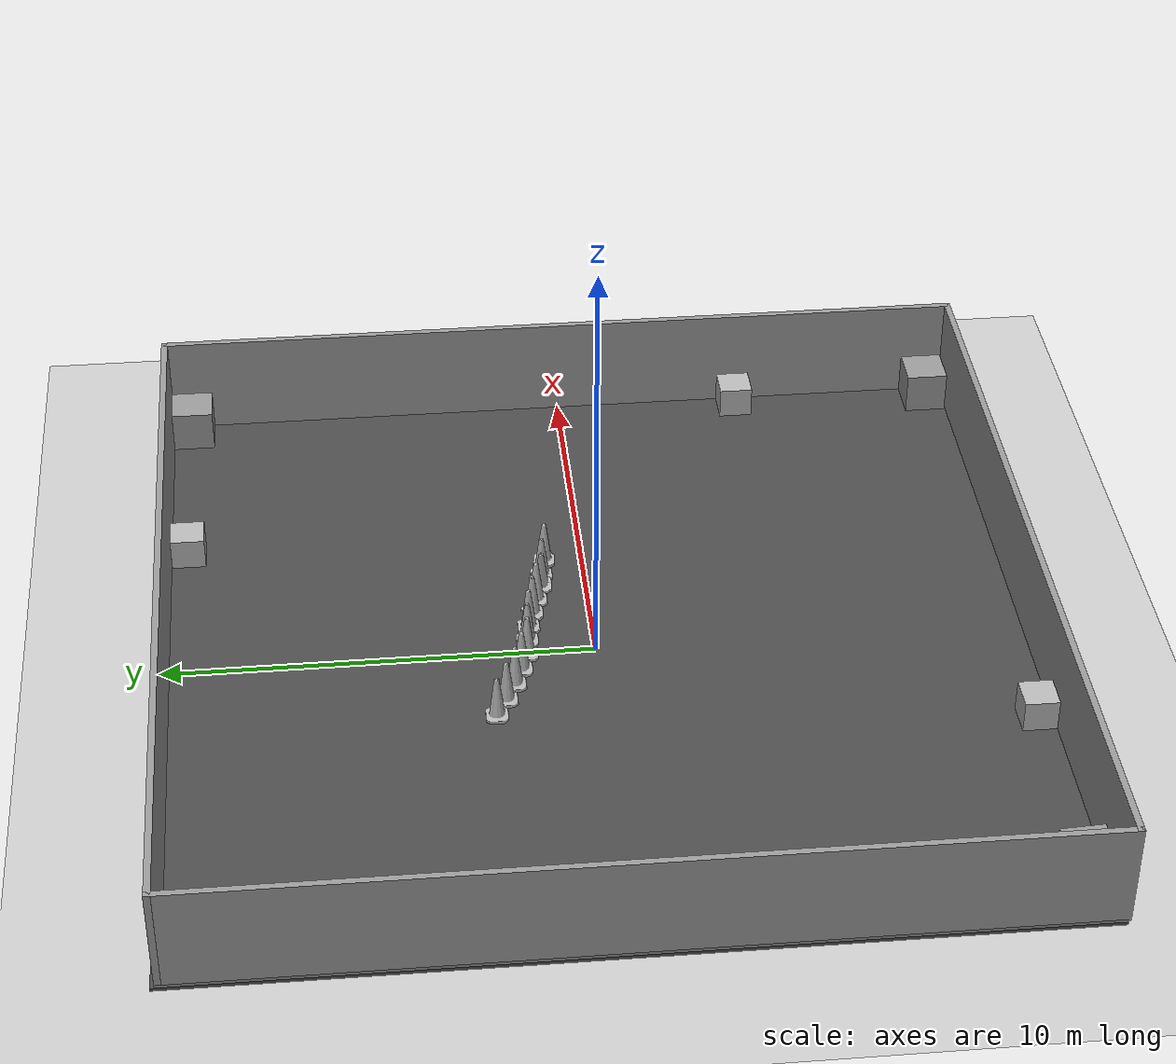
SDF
<sdf version="1.7">
 <world name="default">
  <light name="sun" type="directional">
   <pose>0 0 10 0 -0 0</pose>
   <diffuse>0.8 0.8 0.8 1</diffuse>
   <specular>0.2 0.2 0.2 1</specular>
   <attenuation>
    <range>1000</range>
    <constant>0.9</constant>
    <linear>0.01</linear>
    <quadratic>0.001</quadratic>
   </attenuation>
   <direction>-0.5 0.1 -0.9</direction>
   <spot><inner_angle>0</inner_angle><outer_angle>0</outer_angle><falloff>0</falloff></spot>
  </light>
  <model name="ground_plane">
   <static>1</static>
   <link name="link">
    <collision name="collision">
     <geometry><plane><normal>0 0 1</normal><size>100 100</size></plane></geometry>
     <surface><friction><ode><mu>100</mu><mu2>50</mu2></ode></friction></surface>
    </collision>
    <visual name="visual">
     <cast_shadows>0</cast_shadows>
     <geometry><plane><normal>0 0 1</normal><size>100 100</size></plane></geometry>
     <material>
      <script><uri>file://media/materials/scripts/gazebo.material</uri><name>Gazebo/Grey</name></script>
     </material>
    </visual>
   </link>
  </model>
  <gravity>0 0 -9.8</gravity>
  <magnetic_field>6e-06 2.3e-05 -4.2e-05</magnetic_field>
  <atmosphere type="adiabatic"/>
  <physics type="ode">
   <max_step_size>0.001</max_step_size>
   <real_time_factor>1</real_time_factor>
   <real_time_update_rate>1000</real_time_update_rate>
  </physics>
  <scene><ambient>0.4 0.4 0.4 1</ambient><background>0.7 0.7 0.7 1</background><shadows>1</shadows></scene>
  <audio><device>default</device></audio>
  <spherical_coordinates>
   <surface_model>EARTH_WGS84</surface_model>
   <latitude_deg>0</latitude_deg>
   <longitude_deg>0</longitude_deg>
   <elevation>0</elevation>
   <heading_deg>0</heading_deg>
  </spherical_coordinates>
  <model name="asphalt_plane">
   <static>1</static>
   <link name="link">
    <collision name="collision"><geometry><box><size>20 20 0.1</size></box></geometry></collision>
    <visual name="visual">
     <cast_shadows>0</cast_shadows>
     <geometry><box><size>20 20 0.1</size></box></geometry>
     <material>
      <script>
       <uri>model://asphalt_plane/materials/scripts</uri>
       <uri>model://asphalt_plane/materials/textures</uri>
       <name>vrc/asphalt</name>
      </script>
     </material>
    </visual>
   </link>
  </model>
  <model name="4Walls">
   <pose>0.075 -0.075 0 0 -0 0</pose>
   <link name="Wall_17">
    <collision name="Wall_17_Collision">
     <geometry><box><size>20 0.15 2.5</size></box></geometry>
     <pose>0 0 1.25 0 -0 0</pose>
    </collision>
    <visual name="Wall_17_Visual">
     <pose>0 0 1.25 0 -0 0</pose>
     <geometry><box><size>20 0.15 2.5</size></box></geometry>
     <material>
      <script><uri>file://media/materials/scripts/gazebo.material</uri><name>Gazebo/Grey</name></script>
      <ambient>1 1 1 1</ambient>
     </material>
     <meta><layer>0</layer></meta>
    </visual>
    <pose>0 -9.925 0 0 -0 0</pose>
   </link>
   <link name="Wall_19">
    <collision name="Wall_19_Collision">
     <geometry><box><size>20 0.15 2.5</size></box></geometry>
     <pose>0 0 1.25 0 -0 0</pose>
    </collision>
    <visual name="Wall_19_Visual">
     <pose>0 0 1.25 0 -0 0</pose>
     <geometry><box><size>20 0.15 2.5</size></box></geometry>
     <material>
      <script><uri>file://media/materials/scripts/gazebo.material</uri><name>Gazebo/Grey</name></script>
      <ambient>1 1 1 1</ambient>
     </material>
     <meta><layer>0</layer></meta>
    </visual>
    <pose>9.925 -0 0 0 -0 1.5708</pose>
   </link>
   <link name="Wall_21">
    <collision name="Wall_21_Collision">
     <geometry><box><size>20 0.15 2.5</size></box></geometry>
     <pose>0 0 1.25 0 -0 0</pose>
    </collision>
    <visual name="Wall_21_Visual">
     <pose>0 0 1.25 0 -0 0</pose>
     <geometry><box><size>20 0.15 2.5</size></box></geometry>
     <material>
      <script><uri>file://media/materials/scripts/gazebo.material</uri><name>Gazebo/Grey</name></script>
      <ambient>1 1 1 1</ambient>
     </material>
     <meta><layer>0</layer></meta>
    </visual>
    <pose>0 9.925 0 0 -0 3.14159</pose>
   </link>
   <link name="Wall_22">
    <collision name="Wall_22_Collision">
     <geometry><box><size>20 0.15 2.5</size></box></geometry>
     <pose>0 0 1.25 0 -0 0</pose>
    </collision>
    <visual name="Wall_22_Visual">
     <pose>0 0 1.25 0 -0 0</pose>
     <geometry><box><size>20 0.15 2.5</size></box></geometry>
     <material>
      <script><uri>file://media/materials/scripts/gazebo.material</uri><name>Gazebo/Grey</name></script>
      <ambient>1 1 1 1</ambient>
     </material>
     <meta><layer>0</layer></meta>
    </visual>
    <pose>-9.925 -0 0 0 -0 -1.5708</pose>
   </link>
   <static>1</static>
  </model>
  <model name="unit_box">
   <pose>9.40678 -9.39921 0.549995 -1e-05 0 5.4e-05</pose>
   <link name="link">
    <inertial>
     <mass>1</mass>
     <inertia>
      <ixx>0.166667</ixx>
      <ixy>0</ixy>
      <ixz>0</ixz>
      <iyy>0.166667</iyy>
      <iyz>0</iyz>
      <izz>0.166667</izz>
     </inertia>
    </inertial>
    <collision name="collision"><geometry><box><size>1 1 1</size></box></geometry></collision>
    <visual name="visual">
     <geometry><box><size>1 1 1</size></box></geometry>
     <material>
      <script><name>Gazebo/Grey</name><uri>file://media/materials/scripts/gazebo.material</uri></script>
     </material>
    </visual>
   </link>
  </model>
  <model name="unit_box_clone">
   <pose>9.42467 9.27478 0.549995 -1e-05 -0 6.8e-05</pose>
   <link name="link">
    <inertial>
     <mass>1</mass>
     <inertia>
      <ixx>0.166667</ixx>
      <ixy>0</ixy>
      <ixz>0</ixz>
      <iyy>0.166667</iyy>
      <iyz>0</iyz>
      <izz>0.166667</izz>
     </inertia>
    </inertial>
    <collision name="collision"><geometry><box><size>1 1 1</size></box></geometry></collision>
    <visual name="visual">
     <geometry><box><size>1 1 1</size></box></geometry>
     <material>
      <script><name>Gazebo/Grey</name><uri>file://media/materials/scripts/gazebo.material</uri></script>
     </material>
    </visual>
   </link>
  </model>
  <model name="unit_box_clone_clone">
   <pose>-9.26195 9.27502 0.55 0 -0 1e-06</pose>
   <link name="link">
    <inertial>
     <mass>1</mass>
     <inertia>
      <ixx>0.166667</ixx>
      <ixy>0</ixy>
      <ixz>0</ixz>
      <iyy>0.166667</iyy>
      <iyz>0</iyz>
      <izz>0.166667</izz>
     </inertia>
    </inertial>
    <collision name="collision"><geometry><box><size>1 1 1</size></box></geometry></collision>
    <visual name="visual">
     <geometry><box><size>1 1 1</size></box></geometry>
     <material>
      <script><name>Gazebo/Grey</name><uri>file://media/materials/scripts/gazebo.material</uri></script>
     </material>
    </visual>
   </link>
  </model>
  <model name="unit_box_clone_clone_clone">
   <pose>-8.62146 -9.39757 0.55 0 -0 0.056474</pose>
   <link name="link">
    <inertial>
     <mass>1</mass>
     <inertia>
      <ixx>0.166667</ixx>
      <ixy>0</ixy>
      <ixz>0</ixz>
      <iyy>0.166667</iyy>
      <iyz>0</iyz>
      <izz>0.166667</izz>
     </inertia>
    </inertial>
    <collision name="collision"><geometry><box><size>1 1 1</size></box></geometry></collision>
    <visual name="visual">
     <geometry><box><size>1 1 1</size></box></geometry>
     <material>
      <script><name>Gazebo/Grey</name><uri>file://media/materials/scripts/gazebo.material</uri></script>
     </material>
    </visual>
   </link>
  </model>
  <model name="number1">
   <pose>-3.44359 -9.53926 0.4 0 -0 0</pose>
   <static>1</static>
   <link name="link">
    <visual name="visual">
     <geometry><mesh><uri>model://number1/meshes/number.dae</uri></mesh></geometry>
     <material>
      <script>
       <uri>model://number1/materials/scripts</uri>
       <uri>model://number1/materials/textures</uri>
       <name>Number/One</name>
      </script>
     </material>
    </visual>
   </link>
  </model>
  <model name="number2">
   <pose>-9.34806 5.92857 0.4 0 -0 0</pose>
   <static>1</static>
   <link name="link">
    <visual name="visual">
     <geometry><mesh><uri>model://number1/meshes/number.dae</uri></mesh></geometry>
     <material>
      <script>
       <uri>model://number2/materials/scripts</uri>
       <uri>model://number2/materials/textures</uri>
       <name>Number/Two</name>
      </script>
     </material>
    </visual>
   </link>
  </model>
  <model name="number3">
   <pose>4.34527 9.36089 0.4 0 -0 0</pose>
   <static>1</static>
   <link name="link">
    <visual name="visual">
     <geometry><mesh><uri>model://number1/meshes/number.dae</uri></mesh></geometry>
     <material>
      <script>
       <uri>model://number3/materials/scripts</uri>
       <uri>model://number3/materials/textures</uri>
       <name>Number/Three</name>
      </script>
     </material>
    </visual>
   </link>
  </model>
  <model name="number4">
   <pose>9.51457 -4.51109 0.4 0 -0 0</pose>
   <static>1</static>
   <link name="link">
    <visual name="visual">
     <geometry><mesh><uri>model://number1/meshes/number.dae</uri></mesh></geometry>
     <material>
      <script>
       <uri>model://number4/materials/scripts</uri>
       <uri>model://number4/materials/textures</uri>
       <name>Number/Four</name>
      </script>
     </material>
    </visual>
   </link>
  </model>
  <model name="Construction Cone">
   <link name="link">
    <collision name="collision">
     <geometry>
      <mesh><scale>10 10 10</scale><uri>model://construction_cone/meshes/construction_cone.dae</uri></mesh>
     </geometry>
    </collision>
    <visual name="visual">
     <geometry>
      <mesh><scale>10 10 10</scale><uri>model://construction_cone/meshes/construction_cone.dae</uri></mesh>
     </geometry>
    </visual>
    <inertial>
     <inertia><ixx>1</ixx><ixy>0</ixy><ixz>0</ixz><iyy>1</iyy><iyz>0</iyz><izz>1</izz></inertia>
     <mass>1</mass>
    </inertial>
   </link>
   <pose>3.38527 0.909564 0.049991 2e-06 -2e-06 -0.122906</pose>
  </model>
  <model name="Construction Cone_0">
   <link name="link">
    <collision name="collision">
     <geometry>
      <mesh><scale>10 10 10</scale><uri>model://construction_cone/meshes/construction_cone.dae</uri></mesh>
     </geometry>
    </collision>
    <visual name="visual">
     <geometry>
      <mesh><scale>10 10 10</scale><uri>model://construction_cone/meshes/construction_cone.dae</uri></mesh>
     </geometry>
    </visual>
    <inertial>
     <inertia><ixx>1</ixx><ixy>0</ixy><ixz>0</ixz><iyy>1</iyy><iyz>0</iyz><izz>1</izz></inertia>
     <mass>1</mass>
    </inertial>
   </link>
   <pose>2.82184 1.01999 0.05 0 -0 0.034165</pose>
  </model>
  <model name="Construction Cone_1">
   <link name="link">
    <collision name="collision">
     <geometry>
      <mesh><scale>10 10 10</scale><uri>model://construction_cone/meshes/construction_cone.dae</uri></mesh>
     </geometry>
    </collision>
    <visual name="visual">
     <geometry>
      <mesh><scale>10 10 10</scale><uri>model://construction_cone/meshes/construction_cone.dae</uri></mesh>
     </geometry>
    </visual>
    <inertial>
     <inertia><ixx>1</ixx><ixy>0</ixy><ixz>0</ixz><iyy>1</iyy><iyz>0</iyz><izz>1</izz></inertia>
     <mass>1</mass>
    </inertial>
   </link>
   <pose>2.3851 1.07304 0.093141 0.000334 -0.172189 -0.011182</pose>
  </model>
  <model name="Construction Cone_2">
   <link name="link">
    <collision name="collision">
     <geometry>
      <mesh><scale>10 10 10</scale><uri>model://construction_cone/meshes/construction_cone.dae</uri></mesh>
     </geometry>
    </collision>
    <visual name="visual">
     <geometry>
      <mesh><scale>10 10 10</scale><uri>model://construction_cone/meshes/construction_cone.dae</uri></mesh>
     </geometry>
    </visual>
    <inertial>
     <inertia><ixx>1</ixx><ixy>0</ixy><ixz>0</ixz><iyy>1</iyy><iyz>0</iyz><izz>1</izz></inertia>
     <mass>1</mass>
    </inertial>
   </link>
   <pose>1.87617 1.22507 0.049992 -1e-06 2e-06 -0.015553</pose>
  </model>
  <model name="Construction Cone_3">
   <link name="link">
    <collision name="collision">
     <geometry>
      <mesh><scale>10 10 10</scale><uri>model://construction_cone/meshes/construction_cone.dae</uri></mesh>
     </geometry>
    </collision>
    <visual name="visual">
     <geometry>
      <mesh><scale>10 10 10</scale><uri>model://construction_cone/meshes/construction_cone.dae</uri></mesh>
     </geometry>
    </visual>
    <inertial>
     <inertia><ixx>1</ixx><ixy>0</ixy><ixz>0</ixz><iyy>1</iyy><iyz>0</iyz><izz>1</izz></inertia>
     <mass>1</mass>
    </inertial>
   </link>
   <pose>1.37362 1.35876 0.050002 5e-06 2e-06 -0.020947</pose>
  </model>
  <model name="Construction Cone_4">
   <link name="link">
    <collision name="collision">
     <geometry>
      <mesh><scale>10 10 10</scale><uri>model://construction_cone/meshes/construction_cone.dae</uri></mesh>
     </geometry>
    </collision>
    <visual name="visual">
     <geometry>
      <mesh><scale>10 10 10</scale><uri>model://construction_cone/meshes/construction_cone.dae</uri></mesh>
     </geometry>
    </visual>
    <inertial>
     <inertia><ixx>1</ixx><ixy>0</ixy><ixz>0</ixz><iyy>1</iyy><iyz>0</iyz><izz>1</izz></inertia>
     <mass>1</mass>
    </inertial>
   </link>
   <pose>0.870072 1.48638 0.05 -1e-06 -0 -0.002024</pose>
  </model>
  <model name="Construction Cone_5">
   <link name="link">
    <collision name="collision">
     <geometry>
      <mesh><scale>10 10 10</scale><uri>model://construction_cone/meshes/construction_cone.dae</uri></mesh>
     </geometry>
    </collision>
    <visual name="visual">
     <geometry>
      <mesh><scale>10 10 10</scale><uri>model://construction_cone/meshes/construction_cone.dae</uri></mesh>
     </geometry>
    </visual>
    <inertial>
     <inertia><ixx>1</ixx><ixy>0</ixy><ixz>0</ixz><iyy>1</iyy><iyz>0</iyz><izz>1</izz></inertia>
     <mass>1</mass>
    </inertial>
   </link>
   <pose>0.367158 1.55565 0.049993 4e-06 -3e-06 -0.001257</pose>
  </model>
  <model name="Construction Cone_6">
   <link name="link">
    <collision name="collision">
     <geometry>
      <mesh><scale>10 10 10</scale><uri>model://construction_cone/meshes/construction_cone.dae</uri></mesh>
     </geometry>
    </collision>
    <visual name="visual">
     <geometry>
      <mesh><scale>10 10 10</scale><uri>model://construction_cone/meshes/construction_cone.dae</uri></mesh>
     </geometry>
    </visual>
    <inertial>
     <inertia><ixx>1</ixx><ixy>0</ixy><ixz>0</ixz><iyy>1</iyy><iyz>0</iyz><izz>1</izz></inertia>
     <mass>1</mass>
    </inertial>
   </link>
   <pose>-0.141692 1.60243 0.049997 0 -1e-06 0</pose>
  </model>
  <model name="Construction Cone_7">
   <link name="link">
    <collision name="collision">
     <geometry>
      <mesh><scale>10 10 10</scale><uri>model://construction_cone/meshes/construction_cone.dae</uri></mesh>
     </geometry>
    </collision>
    <visual name="visual">
     <geometry>
      <mesh><scale>10 10 10</scale><uri>model://construction_cone/meshes/construction_cone.dae</uri></mesh>
     </geometry>
    </visual>
    <inertial>
     <inertia><ixx>1</ixx><ixy>0</ixy><ixz>0</ixz><iyy>1</iyy><iyz>0</iyz><izz>1</izz></inertia>
     <mass>1</mass>
    </inertial>
   </link>
   <pose>-0.669365 1.77178 0.049992 3e-06 -1e-06 -0.000256</pose>
  </model>
  <model name="Construction Cone_8">
   <link name="link">
    <collision name="collision">
     <geometry>
      <mesh><scale>10 10 10</scale><uri>model://construction_cone/meshes/construction_cone.dae</uri></mesh>
     </geometry>
    </collision>
    <visual name="visual">
     <geometry>
      <mesh><scale>10 10 10</scale><uri>model://construction_cone/meshes/construction_cone.dae</uri></mesh>
     </geometry>
    </visual>
    <inertial>
     <inertia><ixx>1</ixx><ixy>0</ixy><ixz>0</ixz><iyy>1</iyy><iyz>0</iyz><izz>1</izz></inertia>
     <mass>1</mass>
    </inertial>
   </link>
   <pose>-1.18531 1.96113 0.049999 -3e-06 -0 -0</pose>
  </model>
  <model name="Construction Cone_9">
   <link name="link">
    <collision name="collision">
     <geometry>
      <mesh><scale>10 10 10</scale><uri>model://construction_cone/meshes/construction_cone.dae</uri></mesh>
     </geometry>
    </collision>
    <visual name="visual">
     <geometry>
      <mesh><scale>10 10 10</scale><uri>model://construction_cone/meshes/construction_cone.dae</uri></mesh>
     </geometry>
    </visual>
    <inertial>
     <inertia><ixx>1</ixx><ixy>0</ixy><ixz>0</ixz><iyy>1</iyy><iyz>0</iyz><izz>1</izz></inertia>
     <mass>1</mass>
    </inertial>
   </link>
   <pose>-1.7204 2.19421 0.050001 1e-06 2e-06 0</pose>
  </model>
  <model name="Construction Cone_10">
   <link name="link">
    <collision name="collision">
     <geometry>
      <mesh><scale>10 10 10</scale><uri>model://construction_cone/meshes/construction_cone.dae</uri></mesh>
     </geometry>
    </collision>
    <visual name="visual">
     <geometry>
      <mesh><scale>10 10 10</scale><uri>model://construction_cone/meshes/construction_cone.dae</uri></mesh>
     </geometry>
    </visual>
    <inertial>
     <inertia><ixx>1</ixx><ixy>0</ixy><ixz>0</ixz><iyy>1</iyy><iyz>0</iyz><izz>1</izz></inertia>
     <mass>1</mass>
    </inertial>
   </link>
   <pose>-2.25143 2.44752 0.05 0 -0 0</pose>
  </model>
 </world>
</sdf>
